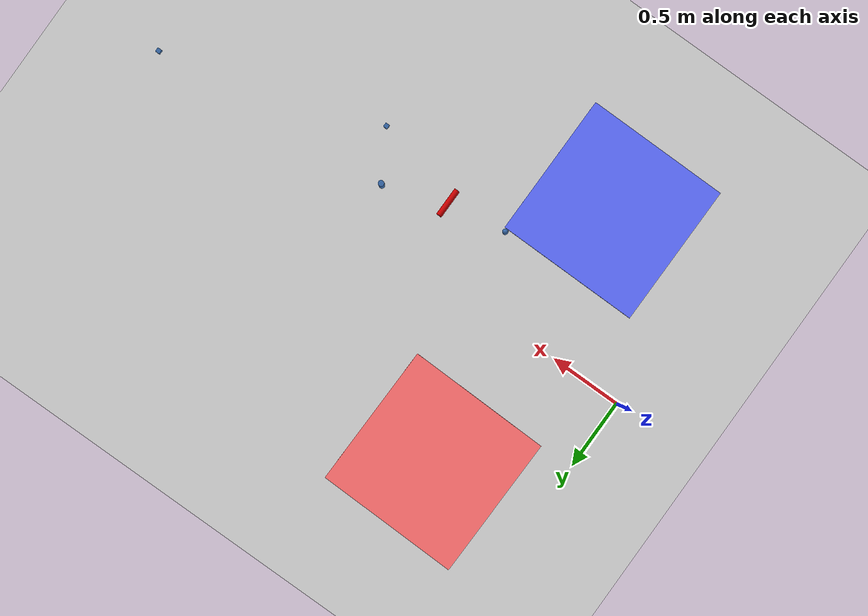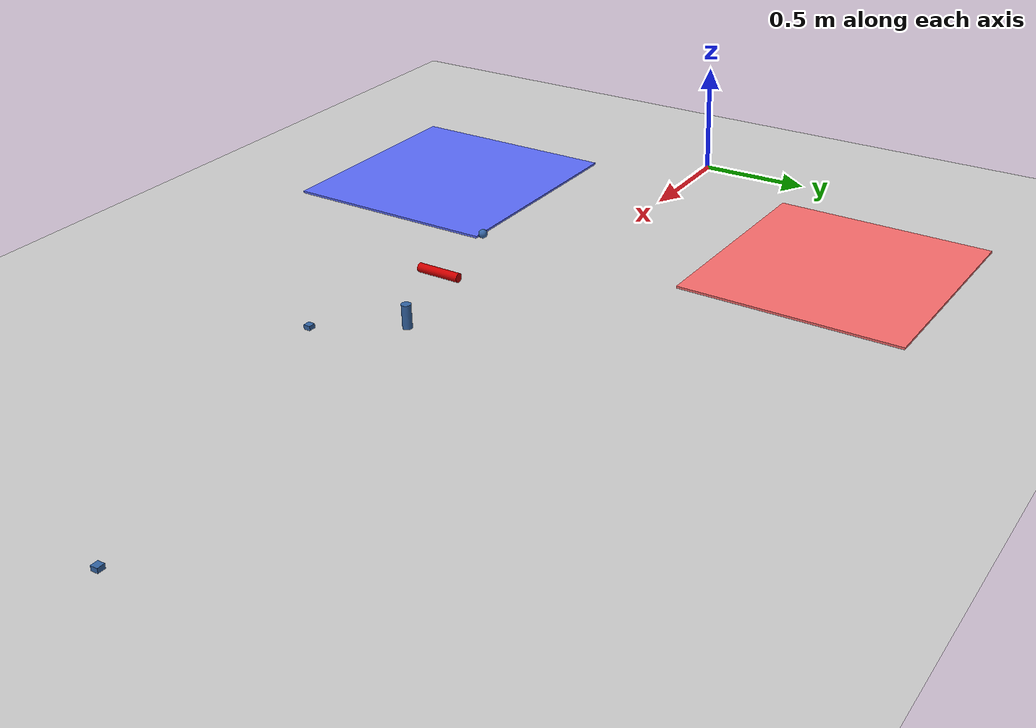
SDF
<sdf version="1.7">
 <world name="default">
  <light name="sun" type="directional">
   <pose>0 0 10 0 -0 0</pose>
   <diffuse>0.8 0.8 0.8 1</diffuse>
   <specular>0.2 0.2 0.2 1</specular>
   <attenuation>
    <range>1000</range>
    <constant>0.9</constant>
    <linear>0.01</linear>
    <quadratic>0.001</quadratic>
   </attenuation>
   <direction>-0.5 0.1 -0.9</direction>
   <spot><inner_angle>0</inner_angle><outer_angle>0</outer_angle><falloff>0</falloff></spot>
  </light>
  <model name="ground_plane">
   <static>1</static>
   <link name="link">
    <collision name="collision">
     <geometry><plane><normal>0 0 1</normal><size>100 100</size></plane></geometry>
     <surface>
      <contact><collide_bitmask>65535</collide_bitmask></contact>
      <friction><ode><mu>100</mu><mu2>50</mu2></ode></friction>
     </surface>
    </collision>
    <visual name="visual">
     <cast_shadows>0</cast_shadows>
     <geometry><plane><normal>0 0 1</normal><size>100 100</size></plane></geometry>
     <material>
      <script><uri>file://media/materials/scripts/gazebo.material</uri><name>Gazebo/Grey</name></script>
     </material>
    </visual>
   </link>
  </model>
  <gravity>0 0 -9.8</gravity>
  <magnetic_field>6e-06 2.3e-05 -4.2e-05</magnetic_field>
  <atmosphere type="adiabatic"/>
  <physics type="ode">
   <max_step_size>0.001</max_step_size>
   <real_time_factor>1</real_time_factor>
   <real_time_update_rate>1000</real_time_update_rate>
  </physics>
  <scene><ambient>0.4 0.4 0.4 1</ambient><background>0.7 0.7 0.7 1</background><shadows>1</shadows></scene>
  <spherical_coordinates>
   <surface_model>EARTH_WGS84</surface_model>
   <latitude_deg>0</latitude_deg>
   <longitude_deg>0</longitude_deg>
   <elevation>0</elevation>
   <heading_deg>0</heading_deg>
  </spherical_coordinates>
  <model name="blue_target_area">
   <link name="link">
    <inertial>
     <mass>2</mass>
     <inertia>
      <ixx>0.166898</ixx>
      <ixy>0</ixy>
      <ixz>0</ixz>
      <iyy>0.166898</iyy>
      <iyz>0</iyz>
      <izz>0.333333</izz>
     </inertia>
    </inertial>
    <visual name="visual">
     <geometry><box><size>1 1 0.01</size></box></geometry>
     <material>
      <script><name>Gazebo/Grey</name><uri>file://media/materials/scripts/gazebo.material</uri></script>
      <shader type="pixel"><normal_map>__default__</normal_map></shader>
      <ambient>0.353 0.42 0.98 1</ambient>
      <diffuse>0.7 0.7 0.7 1</diffuse>
      <specular>0.01 0.01 0.01 1</specular>
      <emissive>0 0 0 1</emissive>
     </material>
    </visual>
    <collision name="collision">
     <geometry><box><size>1 1 0.01</size></box></geometry>
     <surface>
      <friction>
       <ode><mu>1</mu><mu2>1</mu2><fdir1>0 0 0</fdir1><slip1>0</slip1><slip2>0</slip2></ode>
       <torsional>
        <coefficient>1</coefficient>
        <patch_radius>0</patch_radius>
        <surface_radius>0</surface_radius>
        <use_patch_radius>1</use_patch_radius>
        <ode><slip>0</slip></ode>
       </torsional>
      </friction>
      <bounce><restitution_coefficient>0</restitution_coefficient><threshold>1e+06</threshold></bounce>
      <contact>
       <collide_without_contact>0</collide_without_contact>
       <collide_without_contact_bitmask>1</collide_without_contact_bitmask>
       <collide_bitmask>1</collide_bitmask>
       <ode>
        <soft_cfm>0</soft_cfm>
        <soft_erp>0.2</soft_erp>
        <kp>1e+13</kp>
        <kd>1</kd>
        <max_vel>0.01</max_vel>
        <min_depth>0</min_depth>
       </ode>
       <bullet>
        <split_impulse>1</split_impulse>
        <split_impulse_penetration_threshold>-0.01</split_impulse_penetration_threshold>
        <soft_cfm>0</soft_cfm>
        <soft_erp>0.2</soft_erp>
        <kp>1e+13</kp>
        <kd>1</kd>
       </bullet>
      </contact>
     </surface>
    </collision>
   </link>
   <static>0</static>
   <pose>0.750027 -1.00006 0.005 0 -0 -0.009346</pose>
  </model>
  <model name="red_target_area">
   <link name="link">
    <inertial>
     <mass>2</mass>
     <inertia>
      <ixx>0.166898</ixx>
      <ixy>0</ixy>
      <ixz>0</ixz>
      <iyy>0.166898</iyy>
      <iyz>0</iyz>
      <izz>0.333333</izz>
     </inertia>
    </inertial>
    <visual name="visual">
     <geometry><box><size>1 1 0.01</size></box></geometry>
     <material>
      <script><name>Gazebo/Grey</name><uri>file://media/materials/scripts/gazebo.material</uri></script>
      <shader type="pixel"><normal_map>__default__</normal_map></shader>
      <ambient>0.973 0.42 0.42 1</ambient>
      <diffuse>0.7 0.7 0.7 1</diffuse>
      <specular>0.01 0.01 0.01 1</specular>
      <emissive>0 0 0 1</emissive>
     </material>
    </visual>
    <collision name="collision">
     <geometry><box><size>1 1 0.01</size></box></geometry>
     <surface>
      <friction>
       <ode><mu>1</mu><mu2>1</mu2><fdir1>0 0 0</fdir1><slip1>0</slip1><slip2>0</slip2></ode>
       <torsional>
        <coefficient>1</coefficient>
        <patch_radius>0</patch_radius>
        <surface_radius>0</surface_radius>
        <use_patch_radius>1</use_patch_radius>
        <ode><slip>0</slip></ode>
       </torsional>
      </friction>
      <bounce><restitution_coefficient>0</restitution_coefficient><threshold>1e+06</threshold></bounce>
      <contact>
       <collide_without_contact>0</collide_without_contact>
       <collide_without_contact_bitmask>1</collide_without_contact_bitmask>
       <collide_bitmask>1</collide_bitmask>
       <ode>
        <soft_cfm>0</soft_cfm>
        <soft_erp>0.2</soft_erp>
        <kp>1e+13</kp>
        <kd>1</kd>
        <max_vel>0.01</max_vel>
        <min_depth>0</min_depth>
       </ode>
       <bullet>
        <split_impulse>1</split_impulse>
        <split_impulse_penetration_threshold>-0.01</split_impulse_penetration_threshold>
        <soft_cfm>0</soft_cfm>
        <soft_erp>0.2</soft_erp>
        <kp>1e+13</kp>
        <kd>1</kd>
       </bullet>
      </contact>
     </surface>
    </collision>
   </link>
   <static>0</static>
   <pose>0.75 1 0.005 0 0 -0.022172</pose>
  </model>
  <model name="small_ball_blue">
   <link name="link_3">
    <inertial>
     <mass>0.00301617</mass>
     <inertia><ixx>6.3e-06</ixx><ixy>0</ixy><ixz>0</ixz><iyy>6.3e-06</iyy><iyz>0</iyz><izz>6.3e-06</izz></inertia>
    </inertial>
    <pose>1.26155 -1.36195 1.8e-05 -1e-05 -0 0</pose>
    <visual name="visual">
     <geometry><sphere><radius>0.02</radius></sphere></geometry>
     <material>
      <lighting>1</lighting>
      <script><uri>file://media/materials/scripts/gazebo.material</uri><name>Gazebo/Grey</name></script>
      <shader type="pixel"><normal_map>__default__</normal_map></shader>
      <ambient>0.204 0.396 0.643 1</ambient>
      <diffuse>0.204 0.396 0.643 1</diffuse>
      <specular>0.01 0.01 0.01 1</specular>
      <emissive>0 0 0 1</emissive>
     </material>
    </visual>
    <collision name="collision">
     <geometry><sphere><radius>0.02</radius></sphere></geometry>
     <surface>
      <friction>
       <ode><mu>1</mu><mu2>1</mu2><fdir1>0 0 0</fdir1><slip1>0</slip1><slip2>0</slip2></ode>
       <torsional>
        <coefficient>1</coefficient>
        <patch_radius>0</patch_radius>
        <surface_radius>0</surface_radius>
        <use_patch_radius>1</use_patch_radius>
        <ode><slip>0</slip></ode>
       </torsional>
      </friction>
      <bounce><restitution_coefficient>0</restitution_coefficient><threshold>1e+06</threshold></bounce>
      <contact>
       <collide_without_contact>0</collide_without_contact>
       <collide_without_contact_bitmask>1</collide_without_contact_bitmask>
       <collide_bitmask>1</collide_bitmask>
       <ode>
        <soft_cfm>0</soft_cfm>
        <soft_erp>0.2</soft_erp>
        <kp>1e+13</kp>
        <kd>1</kd>
        <max_vel>0.01</max_vel>
        <min_depth>0</min_depth>
       </ode>
       <bullet>
        <split_impulse>1</split_impulse>
        <split_impulse_penetration_threshold>-0.01</split_impulse_penetration_threshold>
        <soft_cfm>0</soft_cfm>
        <soft_erp>0.2</soft_erp>
        <kp>1e+13</kp>
        <kd>1</kd>
       </bullet>
      </contact>
     </surface>
    </collision>
   </link>
   <static>0</static>
   <pose>-0.026513 0.879721 0.019982 0 -0 0</pose>
  </model>
  <model name="small_cylinder_red">
   <link name="link_4">
    <inertial>
     <mass>0.00117341</mass>
     <inertia><ixx>8.27e-06</ixx><ixy>0</ixy><ixz>0</ixz><iyy>8.27e-06</iyy><iyz>0</iyz><izz>6e-07</izz></inertia>
    </inertial>
    <pose>1.80047 -1.21558 1.7e-05 -1e-05 -0 0</pose>
    <visual name="visual">
     <geometry><cylinder><radius>0.02</radius><length>0.2</length></cylinder></geometry>
     <material>
      <lighting>1</lighting>
      <script><uri>file://media/materials/scripts/gazebo.material</uri><name>Gazebo/Grey</name></script>
      <shader type="pixel"><normal_map>__default__</normal_map></shader>
      <diffuse>0.8 0 0 1</diffuse>
      <ambient>0.8 0 0 1</ambient>
      <specular>0.01 0.01 0.01 1</specular>
      <emissive>0 0 0 1</emissive>
     </material>
    </visual>
    <collision name="collision">
     <geometry><cylinder><radius>0.02</radius><length>0.2</length></cylinder></geometry>
     <surface>
      <friction>
       <ode><mu>1</mu><mu2>1</mu2><fdir1>0 0 0</fdir1><slip1>0</slip1><slip2>0</slip2></ode>
       <torsional>
        <coefficient>1</coefficient>
        <patch_radius>0</patch_radius>
        <surface_radius>0</surface_radius>
        <use_patch_radius>1</use_patch_radius>
        <ode><slip>0</slip></ode>
       </torsional>
      </friction>
      <bounce><restitution_coefficient>0</restitution_coefficient><threshold>1e+06</threshold></bounce>
      <contact>
       <collide_without_contact>0</collide_without_contact>
       <collide_without_contact_bitmask>1</collide_without_contact_bitmask>
       <collide_bitmask>1</collide_bitmask>
       <ode>
        <soft_cfm>0</soft_cfm>
        <soft_erp>0.2</soft_erp>
        <kp>1e+13</kp>
        <kd>1</kd>
        <max_vel>0.01</max_vel>
        <min_depth>0</min_depth>
       </ode>
       <bullet>
        <split_impulse>1</split_impulse>
        <split_impulse_penetration_threshold>-0.01</split_impulse_penetration_threshold>
        <soft_cfm>0</soft_cfm>
        <soft_erp>0.2</soft_erp>
        <kp>1e+13</kp>
        <kd>1</kd>
       </bullet>
      </contact>
     </surface>
    </collision>
   </link>
   <static>0</static>
   <pose>-0.182647 -0.404603 -1.15609 -1.57076 0.021778 -0.007154</pose>
  </model>
  <model name="small_cylinder_blue">
   <link name="link_4">
    <inertial>
     <mass>0.00117341</mass>
     <inertia><ixx>8.27e-06</ixx><ixy>0</ixy><ixz>0</ixz><iyy>8.27e-06</iyy><iyz>0</iyz><izz>6e-07</izz></inertia>
    </inertial>
    <pose>1.80047 -1.21558 1.7e-05 -1e-05 -0 0</pose>
    <visual name="visual">
     <geometry><cylinder><radius>0.02</radius><length>0.2</length></cylinder></geometry>
     <material>
      <lighting>1</lighting>
      <script><uri>file://media/materials/scripts/gazebo.material</uri><name>Gazebo/Grey</name></script>
      <shader type="pixel"><normal_map>__default__</normal_map></shader>
      <diffuse>0.204 0.396 0.643 1</diffuse>
      <ambient>0.204 0.396 0.643 1</ambient>
      <specular>0.01 0.01 0.01 1</specular>
      <emissive>0 0 0 1</emissive>
     </material>
    </visual>
    <collision name="collision">
     <geometry><cylinder><radius>0.02</radius><length>0.2</length></cylinder></geometry>
     <surface>
      <friction>
       <ode><mu>1</mu><mu2>1</mu2><fdir1>0 0 0</fdir1><slip1>0</slip1><slip2>0</slip2></ode>
       <torsional>
        <coefficient>1</coefficient>
        <patch_radius>0</patch_radius>
        <surface_radius>0</surface_radius>
        <use_patch_radius>1</use_patch_radius>
        <ode><slip>0</slip></ode>
       </torsional>
      </friction>
      <bounce><restitution_coefficient>0</restitution_coefficient><threshold>1e+06</threshold></bounce>
      <contact>
       <collide_without_contact>0</collide_without_contact>
       <collide_without_contact_bitmask>1</collide_without_contact_bitmask>
       <collide_bitmask>1</collide_bitmask>
       <ode>
        <soft_cfm>0</soft_cfm>
        <soft_erp>0.2</soft_erp>
        <kp>1e+13</kp>
        <kd>1</kd>
        <max_vel>0.01</max_vel>
        <min_depth>0</min_depth>
       </ode>
       <bullet>
        <split_impulse>1</split_impulse>
        <split_impulse_penetration_threshold>-0.01</split_impulse_penetration_threshold>
        <soft_cfm>0</soft_cfm>
        <soft_erp>0.2</soft_erp>
        <kp>1e+13</kp>
        <kd>1</kd>
       </bullet>
      </contact>
     </surface>
    </collision>
   </link>
   <static>0</static>
   <pose>0.259899 0.950974 0 0 -0 0</pose>
  </model>
  <model name="small_box_blue">
   <link name="link_2">
    <inertial>
     <mass>0.00432077</mass>
     <inertia>
      <ixx>1.771e-05</ixx>
      <ixy>0</ixy>
      <ixz>0</ixz>
      <iyy>2.253e-05</iyy>
      <iyz>0</iyz>
      <izz>1.858e-05</izz>
     </inertia>
    </inertial>
    <pose>1.48951 -0.615567 1.1e-05 -1e-05 -0 0</pose>
    <visual name="visual">
     <geometry><box><size>0.03 0.03 0.03</size></box></geometry>
     <material>
      <lighting>1</lighting>
      <script><uri>file://media/materials/scripts/gazebo.material</uri><name>Gazebo/Grey</name></script>
      <shader type="pixel"><normal_map>__default__</normal_map></shader>
      <ambient>0.204 0.396 0.643 1</ambient>
      <diffuse>0.204 0.396 0.643 1</diffuse>
      <specular>0.01 0.01 0.01 1</specular>
      <emissive>0 0 0 1</emissive>
     </material>
    </visual>
    <collision name="collision">
     <geometry><box><size>0.03 0.03 0.03</size></box></geometry>
     <surface>
      <friction>
       <ode><mu>1</mu><mu2>1</mu2><fdir1>0 0 0</fdir1><slip1>0</slip1><slip2>0</slip2></ode>
       <torsional>
        <coefficient>1</coefficient>
        <patch_radius>0</patch_radius>
        <surface_radius>0</surface_radius>
        <use_patch_radius>1</use_patch_radius>
        <ode><slip>0</slip></ode>
       </torsional>
      </friction>
      <bounce><restitution_coefficient>0</restitution_coefficient><threshold>1e+06</threshold></bounce>
      <contact>
       <collide_without_contact>0</collide_without_contact>
       <collide_without_contact_bitmask>1</collide_without_contact_bitmask>
       <collide_bitmask>1</collide_bitmask>
       <ode>
        <soft_cfm>0</soft_cfm>
        <soft_erp>0.2</soft_erp>
        <kp>1e+13</kp>
        <kd>1</kd>
        <max_vel>0.01</max_vel>
        <min_depth>0</min_depth>
       </ode>
       <bullet>
        <split_impulse>1</split_impulse>
        <split_impulse_penetration_threshold>-0.01</split_impulse_penetration_threshold>
        <soft_cfm>0</soft_cfm>
        <soft_erp>0.2</soft_erp>
        <kp>1e+13</kp>
        <kd>1</kd>
       </bullet>
      </contact>
     </surface>
    </collision>
   </link>
   <static>0</static>
   <pose>2.25045 0.484262 0 0 -0 0</pose>
  </model>
  <model name="small_box_blue_0">
   <link name="link_2">
    <inertial>
     <mass>0.00432077</mass>
     <inertia>
      <ixx>1.771e-05</ixx>
      <ixy>0</ixy>
      <ixz>0</ixz>
      <iyy>2.253e-05</iyy>
      <iyz>0</iyz>
      <izz>1.858e-05</izz>
     </inertia>
    </inertial>
    <pose>1.48951 -0.615567 1.1e-05 -1e-05 -0 0</pose>
    <visual name="visual">
     <geometry><box><size>0.03 0.03 0.03</size></box></geometry>
     <material>
      <lighting>1</lighting>
      <script><uri>file://media/materials/scripts/gazebo.material</uri><name>Gazebo/Grey</name></script>
      <shader type="pixel"><normal_map>__default__</normal_map></shader>
      <ambient>0.204 0.396 0.643 1</ambient>
      <diffuse>0.204 0.396 0.643 1</diffuse>
      <specular>0.01 0.01 0.01 1</specular>
      <emissive>0 0 0 1</emissive>
     </material>
    </visual>
    <collision name="collision">
     <geometry><box><size>0.03 0.03 0.03</size></box></geometry>
     <surface>
      <friction>
       <ode><mu>1</mu><mu2>1</mu2><fdir1>0 0 0</fdir1><slip1>0</slip1><slip2>0</slip2></ode>
       <torsional>
        <coefficient>1</coefficient>
        <patch_radius>0</patch_radius>
        <surface_radius>0</surface_radius>
        <use_patch_radius>1</use_patch_radius>
        <ode><slip>0</slip></ode>
       </torsional>
      </friction>
      <bounce><restitution_coefficient>0</restitution_coefficient><threshold>1e+06</threshold></bounce>
      <contact>
       <collide_without_contact>0</collide_without_contact>
       <collide_without_contact_bitmask>1</collide_without_contact_bitmask>
       <collide_bitmask>1</collide_bitmask>
       <ode>
        <soft_cfm>0</soft_cfm>
        <soft_erp>0.2</soft_erp>
        <kp>1e+13</kp>
        <kd>1</kd>
        <max_vel>0.01</max_vel>
        <min_depth>0</min_depth>
       </ode>
       <bullet>
        <split_impulse>1</split_impulse>
        <split_impulse_penetration_threshold>-0.01</split_impulse_penetration_threshold>
        <soft_cfm>0</soft_cfm>
        <soft_erp>0.2</soft_erp>
        <kp>1e+13</kp>
        <kd>1</kd>
       </bullet>
      </contact>
     </surface>
    </collision>
   </link>
   <static>0</static>
   <pose>0.768619 0.02278 0 0 -0 0</pose>
  </model>
 </world>
</sdf>
